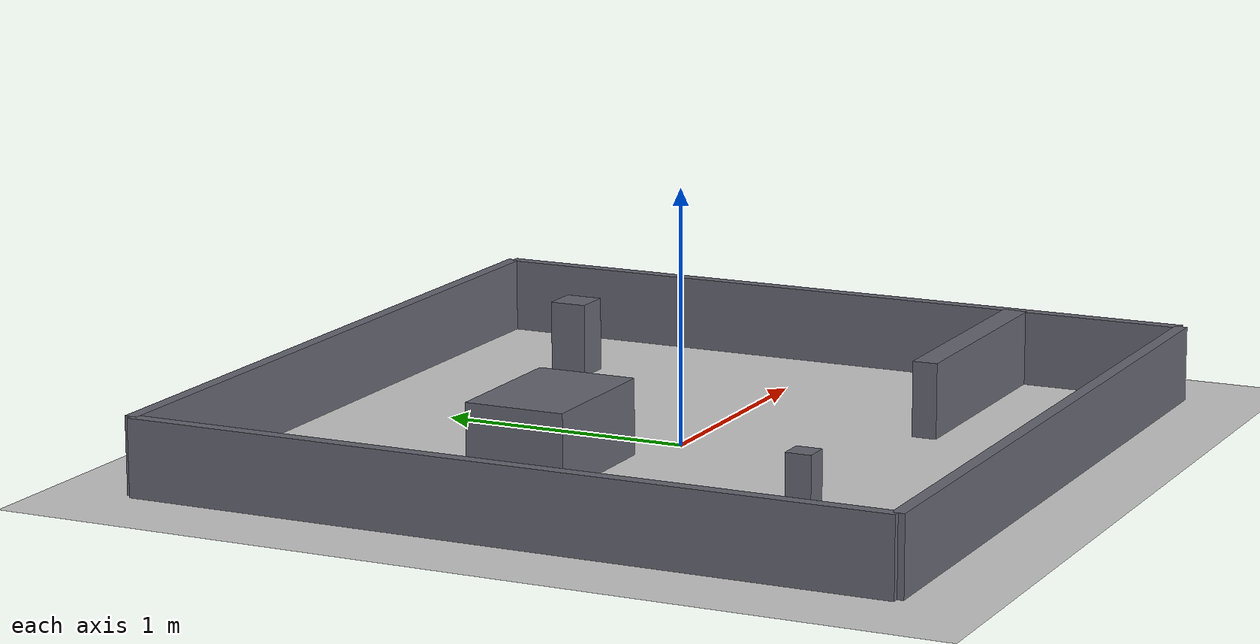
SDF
<?xml version="1.0"?>
<sdf version="1.8">
  <world name="sensor_world">
    <physics name="1ms" type="ignored">
      <max_step_size>0.001</max_step_size>
      <real_time_factor>1.0</real_time_factor>
    </physics>
    <plugin
      filename="gz-sim-physics-system"
      name="gz::sim::systems::Physics">
    </plugin>
    <plugin
      filename="gz-sim-user-commands-system"
      name="gz::sim::systems::UserCommands">
    </plugin>
    <plugin
      filename="gz-sim-scene-broadcaster-system"
      name="gz::sim::systems::SceneBroadcaster">
    </plugin>
    <plugin
      filename="gz-sim-imu-system"
      name="gz::sim::systems::Imu">
    </plugin>
    <plugin
      filename="gz-sim-sensors-system"
      name="gz::sim::systems::Sensors">
      <render_engine>ogre2</render_engine>
    </plugin>
    <plugin filename="libgz-sim-joint-state-publisher-system.so"
      name="gz::sim::systems::JointStatePublisher">
      <topic>/joint_states</topic>
    </plugin>
    <gui fullscreen="0">

      <!-- 3D scene -->
      <plugin filename="MinimalScene" name="3D View">
        <gz-gui>
          <title>3D View</title>
          <property type="bool" key="showTitleBar">false</property>
          <property type="string" key="state">docked</property>
        </gz-gui>

        <engine>ogre2</engine>
        <scene>scene</scene>
        <ambient_light>0.4 0.4 0.4</ambient_light>
        <background_color>0.8 0.8 0.8</background_color>
        <camera_pose>-6 0 6 0 0.5 0</camera_pose>
        <camera_clip>
          <near>0.1</near>
          <far>25000</far>
        </camera_clip>
      </plugin>

      <!-- Plugins that add functionality to the scene -->
      <plugin filename="EntityContextMenuPlugin" name="Entity context menu">
        <gz-gui>
          <property key="state" type="string">floating</property>
          <property key="width" type="double">5</property>
          <property key="height" type="double">5</property>
          <property key="showTitleBar" type="bool">false</property>
        </gz-gui>
      </plugin>
      <plugin filename="GzSceneManager" name="Scene Manager">
        <gz-gui>
          <property key="resizable" type="bool">false</property>
          <property key="width" type="double">5</property>
          <property key="height" type="double">5</property>
          <property key="state" type="string">floating</property>
          <property key="showTitleBar" type="bool">false</property>
        </gz-gui>
      </plugin>
      <plugin filename="InteractiveViewControl" name="Interactive view control">
        <gz-gui>
          <property key="resizable" type="bool">false</property>
          <property key="width" type="double">5</property>
          <property key="height" type="double">5</property>
          <property key="state" type="string">floating</property>
          <property key="showTitleBar" type="bool">false</property>
        </gz-gui>
      </plugin>
      <plugin filename="CameraTracking" name="Camera Tracking">
        <gz-gui>
          <property key="resizable" type="bool">false</property>
          <property key="width" type="double">5</property>
          <property key="height" type="double">5</property>
          <property key="state" type="string">floating</property>
          <property key="showTitleBar" type="bool">false</property>
        </gz-gui>
      </plugin>
      <plugin filename="MarkerManager" name="Marker manager">
        <gz-gui>
          <property key="resizable" type="bool">false</property>
          <property key="width" type="double">5</property>
          <property key="height" type="double">5</property>
          <property key="state" type="string">floating</property>
          <property key="showTitleBar" type="bool">false</property>
        </gz-gui>
      </plugin>
      <plugin filename="SelectEntities" name="Select Entities">
        <gz-gui>
          <anchors target="Select entities">
            <line own="right" target="right" />
            <line own="top" target="top" />
          </anchors>
          <property key="resizable" type="bool">false</property>
          <property key="width" type="double">5</property>
          <property key="height" type="double">5</property>
          <property key="state" type="string">floating</property>
          <property key="showTitleBar" type="bool">false</property>
        </gz-gui>
      </plugin>
      <plugin filename="VisualizationCapabilities" name="Visualization Capabilities">
        <gz-gui>
          <property key="resizable" type="bool">false</property>
          <property key="width" type="double">5</property>
          <property key="height" type="double">5</property>
          <property key="state" type="string">floating</property>
          <property key="showTitleBar" type="bool">false</property>
        </gz-gui>
      </plugin>

      <plugin filename="Spawn" name="Spawn Entities">
        <gz-gui>
          <anchors target="Select entities">
            <line own="right" target="right" />
            <line own="top" target="top" />
          </anchors>
          <property key="resizable" type="bool">false</property>
          <property key="width" type="double">5</property>
          <property key="height" type="double">5</property>
          <property key="state" type="string">floating</property>
          <property key="showTitleBar" type="bool">false</property>
        </gz-gui>
      </plugin>

      <!-- World control -->
      <plugin filename="WorldControl" name="World control">
        <gz-gui>
          <title>World control</title>
          <property type="bool" key="showTitleBar">false</property>
          <property type="bool" key="resizable">false</property>
          <property type="double" key="height">72</property>
          <property type="double" key="width">121</property>
          <property type="double" key="z">1</property>

          <property type="string" key="state">floating</property>
          <anchors target="3D View">
            <line own="left" target="left" />
            <line own="bottom" target="bottom" />
          </anchors>
        </gz-gui>

        <play_pause>true</play_pause>
        <step>true</step>
        <start_paused>false</start_paused>
        <use_event>true</use_event>

      </plugin>

      <!-- World statistics -->
      <plugin filename="WorldStats" name="World stats">
        <gz-gui>
          <title>World stats</title>
          <property type="bool" key="showTitleBar">false</property>
          <property type="bool" key="resizable">false</property>
          <property type="double" key="height">110</property>
          <property type="double" key="width">290</property>
          <property type="double" key="z">1</property>

          <property type="string" key="state">floating</property>
          <anchors target="3D View">
            <line own="right" target="right" />
            <line own="bottom" target="bottom" />
          </anchors>
        </gz-gui>

        <sim_time>true</sim_time>
        <real_time>true</real_time>
        <real_time_factor>true</real_time_factor>
        <iterations>true</iterations>
      </plugin>

      <!-- Insert simple shapes -->
      <plugin filename="Shapes" name="Shapes">
        <gz-gui>
          <property key="resizable" type="bool">false</property>
          <property key="x" type="double">0</property>
          <property key="y" type="double">0</property>
          <property key="width" type="double">250</property>
          <property key="height" type="double">50</property>
          <property key="state" type="string">floating</property>
          <property key="showTitleBar" type="bool">false</property>
          <property key="cardBackground" type="string">#666666</property>
        </gz-gui>
      </plugin>

      <!-- Insert lights -->
      <plugin filename="Lights" name="Lights">
        <gz-gui>
          <property key="resizable" type="bool">false</property>
          <property key="x" type="double">250</property>
          <property key="y" type="double">0</property>
          <property key="width" type="double">150</property>
          <property key="height" type="double">50</property>
          <property key="state" type="string">floating</property>
          <property key="showTitleBar" type="bool">false</property>
          <property key="cardBackground" type="string">#666666</property>
        </gz-gui>
      </plugin>

      <!-- Translate / rotate -->
      <plugin filename="TransformControl" name="Transform control">
        <gz-gui>
          <property key="resizable" type="bool">false</property>
          <property key="x" type="double">0</property>
          <property key="y" type="double">50</property>
          <property key="width" type="double">250</property>
          <property key="height" type="double">50</property>
          <property key="state" type="string">floating</property>
          <property key="showTitleBar" type="bool">false</property>
          <property key="cardBackground" type="string">#777777</property>
        </gz-gui>
      </plugin>

      <!-- Screenshot -->
      <plugin filename="Screenshot" name="Screenshot">
        <gz-gui>
          <property key="resizable" type="bool">false</property>
          <property key="x" type="double">250</property>
          <property key="y" type="double">50</property>
          <property key="width" type="double">50</property>
          <property key="height" type="double">50</property>
          <property key="state" type="string">floating</property>
          <property key="showTitleBar" type="bool">false</property>
          <property key="cardBackground" type="string">#777777</property>
        </gz-gui>
      </plugin>

      <!-- Video recorder -->
      <plugin filename="VideoRecorder" name="VideoRecorder">
        <gz-gui>
          <property key="resizable" type="bool">false</property>
          <property key="x" type="double">300</property>
          <property key="y" type="double">50</property>
          <property key="width" type="double">50</property>
          <property key="height" type="double">50</property>
          <property key="state" type="string">floating</property>
          <property key="showTitleBar" type="bool">false</property>
          <property key="cardBackground" type="string">#777777</property>
        </gz-gui>

        <record_video>
          <use_sim_time>true</use_sim_time>
          <lockstep>false</lockstep>
          <bitrate>4000000</bitrate>
        </record_video>
      </plugin>

      <!-- Inspector -->
      <plugin filename="ComponentInspector" name="Component inspector">
        <gz-gui>
          <property type="string" key="state">docked_collapsed</property>
        </gz-gui>
      </plugin>

      <!-- Entity tree -->
      <plugin filename="EntityTree" name="Entity tree">
        <gz-gui>
          <property type="string" key="state">docked_collapsed</property>
        </gz-gui>
      </plugin>

      <!-- View angle -->
      <plugin filename="ViewAngle" name="View angle">
        <gz-gui>
          <property type="string" key="state">docked_collapsed</property>
        </gz-gui>
      </plugin>

      <!-- KeyPublisher plugin-->
      <plugin filename="KeyPublisher" name="Key Publisher" />

    </gui>

    <light type="directional" name="sun">
      <cast_shadows>true</cast_shadows>
      <pose>0 0 10 0 0 0</pose>
      <diffuse>0.8 0.8 0.8 1</diffuse>
      <specular>0.2 0.2 0.2 1</specular>
      <attenuation>
        <range>1000</range>
        <constant>0.9</constant>
        <linear>0.01</linear>
        <quadratic>0.001</quadratic>
      </attenuation>
      <direction>-0.5 0.1 -0.9</direction>
    </light>

    <model name="ground_plane">
      <static>true</static>
      <link name="link">
        <collision name="collision">
          <geometry>
            <plane>
              <normal>0 0 1</normal>
            </plane>
          </geometry>
        </collision>
        <visual name="visual">
          <geometry>
            <plane>
              <normal>0 0 1</normal>
              <size>20 20</size>
            </plane>
          </geometry>
          <material>
            <ambient>0.8 0.8 0.8 1</ambient>
            <diffuse>0.8 0.8 0.8 1</diffuse>
            <specular>0.8 0.8 0.8 1</specular>
          </material>
        </visual>
      </link>
    </model>

    <model name="slam_map">
      <static>true</static>
      <link name="walls">
        <collision name="north_wall_collision">
          <pose>0 1.5 0.15 0 0 0</pose>
          <geometry>
            <box><size>3.0 0.05 0.3</size></box>
          </geometry>
        </collision>
        <visual name="north_wall_visual">
          <pose>0 1.5 0.15 0 0 0</pose>
          <geometry>
            <box><size>3.0 0.05 0.3</size></box>
          </geometry>
          <material>
            <ambient>0.4 0.4 0.45 1</ambient>
            <diffuse>0.4 0.4 0.45 1</diffuse>
          </material>
        </visual>
        <collision name="south_wall_collision">
          <pose>0 -1.5 0.15 0 0 0</pose>
          <geometry>
            <box><size>3.0 0.05 0.3</size></box>
          </geometry>
        </collision>
        <visual name="south_wall_visual">
          <pose>0 -1.5 0.15 0 0 0</pose>
          <geometry>
            <box><size>3.0 0.05 0.3</size></box>
          </geometry>
          <material>
            <ambient>0.4 0.4 0.45 1</ambient>
            <diffuse>0.4 0.4 0.45 1</diffuse>
          </material>
        </visual>
        <collision name="east_wall_collision">
          <pose>1.5 0 0.15 0 0 0</pose>
          <geometry>
            <box><size>0.05 3.0 0.3</size></box>
          </geometry>
        </collision>
        <visual name="east_wall_visual">
          <pose>1.5 0 0.15 0 0 0</pose>
          <geometry>
            <box><size>0.05 3.0 0.3</size></box>
          </geometry>
          <material>
            <ambient>0.4 0.4 0.45 1</ambient>
            <diffuse>0.4 0.4 0.45 1</diffuse>
          </material>
        </visual>
        <collision name="west_wall_collision">
          <pose>-1.5 0 0.15 0 0 0</pose>
          <geometry>
            <box><size>0.05 3.0 0.3</size></box>
          </geometry>
        </collision>
        <visual name="west_wall_visual">
          <pose>-1.5 0 0.15 0 0 0</pose>
          <geometry>
            <box><size>0.05 3.0 0.3</size></box>
          </geometry>
          <material>
            <ambient>0.4 0.4 0.45 1</ambient>
            <diffuse>0.4 0.4 0.45 1</diffuse>
          </material>
        </visual>
        <collision name="alcove_wall_collision">
          <pose>1 -0.8 0.15 0 0 0</pose>
          <geometry>
            <box><size>1 0.1 0.3</size></box>
          </geometry>
        </collision>
        <visual name="alcove_wall_visual">
          <pose>1 -0.8 0.15 0 0 0</pose>
          <geometry>
            <box><size>1 0.1 0.3</size></box>
          </geometry>
          <material>
            <ambient>0.4 0.4 0.45 1</ambient>
            <diffuse>0.4 0.4 0.45 1</diffuse>
          </material>
        </visual>
      </link>
      <link name="pillars">
        <collision name="large_pillar_collision">
          <pose>0.9 0.9 0.15 0 0 0</pose>
          <geometry>
            <box><size>0.15 0.15 0.3</size></box>
          </geometry>
        </collision>
        <visual name="large_pillar_visual">
          <pose>0.9 0.9 0.15 0 0 0</pose>
          <geometry>
            <box><size>0.15 0.15 0.3</size></box>
          </geometry>
          <material>
            <ambient>0.4 0.4 0.45 1</ambient>
            <diffuse>0.4 0.4 0.45 1</diffuse>
          </material>
        </visual>
        <collision name="small_pillar_collision">
          <pose>-0.9 -0.9 0.15 0 0 0</pose>
          <geometry>
            <box><size>0.1 0.1 0.3</size></box>
          </geometry>
        </collision>
        <visual name="small_pillar_visual">
          <pose>-0.9 -0.9 0.15 0 0 0</pose>
          <geometry>
            <box><size>0.1 0.1 0.3</size></box>
          </geometry>
          <material>
            <ambient>0.4 0.4 0.45 1</ambient>
            <diffuse>0.4 0.4 0.45 1</diffuse>
          </material>
        </visual>
      </link>
      <link name="block">
        <collision name="block_collision">
          <pose>-0.5 0.3 0.15 0 0 0</pose>
          <geometry>
            <box><size>0.6 0.4 0.3</size></box>
          </geometry>
        </collision>
        <visual name="block_visual">
          <pose>-0.5 0.3 0.15 0 0 0</pose>
          <geometry>
            <box><size>0.6 0.4 0.3</size></box>
          </geometry>
          <material>
            <ambient>0.4 0.4 0.45 1</ambient>
            <diffuse>0.4 0.4 0.45 1</diffuse>
          </material>
        </visual>
      </link>
    </model>
  </world>
</sdf>
